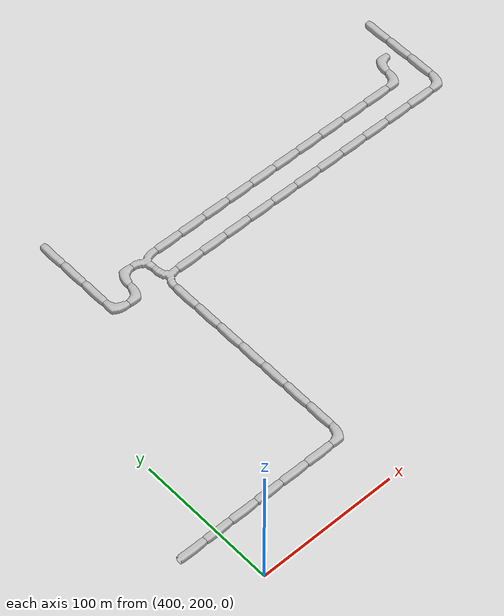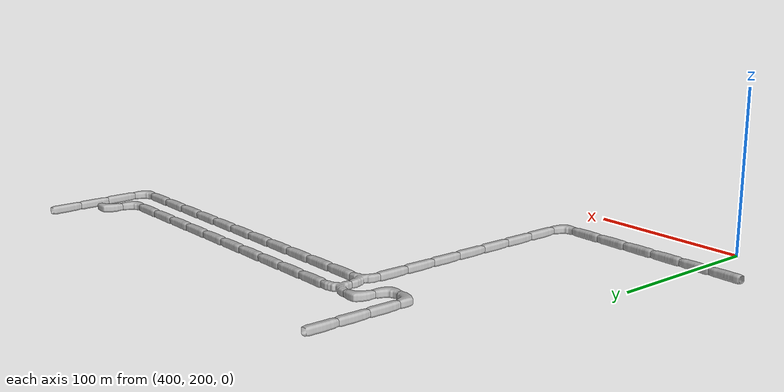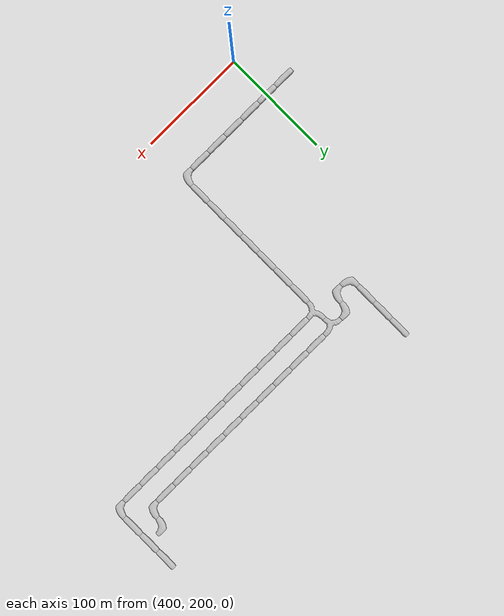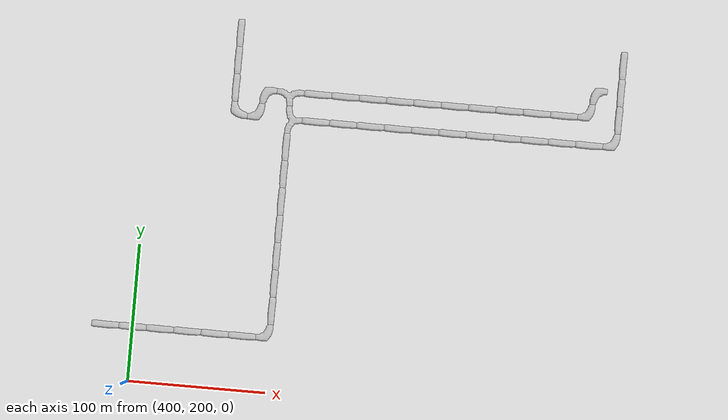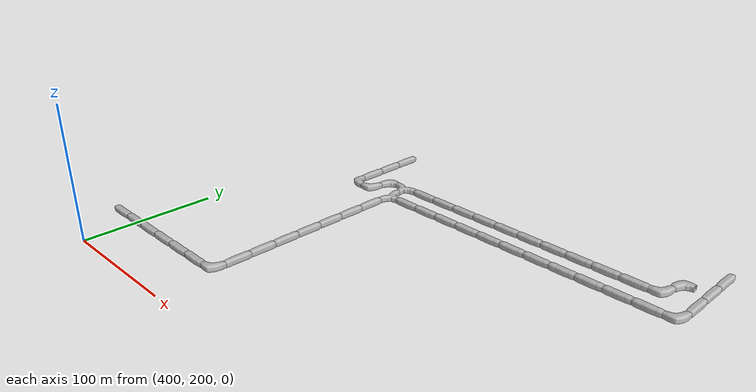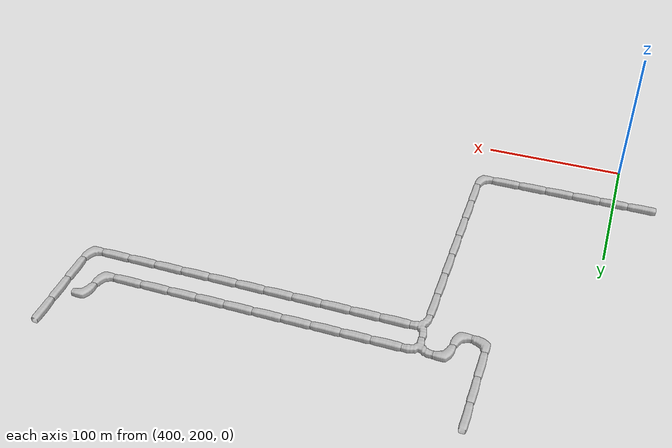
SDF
<sdf version="1.6">
 <world name="cave_16000_0">
  <include>
   <static>true</static>
   <name>cave_19_12</name>
   <pose>380 240 0 0 0 1.5707963267948966</pose>
   <uri>model://cave_straight_20m</uri>
  </include>
  <include>
   <static>true</static>
   <name>cave_20_12</name>
   <pose>400 240 0 0 0 1.5707963267948966</pose>
   <uri>model://cave_straight_20m</uri>
  </include>
  <include>
   <static>true</static>
   <name>cave_21_12</name>
   <pose>420 240 0 0 0 1.5707963267948966</pose>
   <uri>model://cave_straight_20m</uri>
  </include>
  <include>
   <static>true</static>
   <name>cave_22_12</name>
   <pose>440 240 0 0 0 1.5707963267948966</pose>
   <uri>model://cave_straight_20m</uri>
  </include>
  <include>
   <static>true</static>
   <name>cave_23_12</name>
   <pose>460 240 0 0 0 1.5707963267948966</pose>
   <uri>model://cave_straight_20m</uri>
  </include>
  <include>
   <static>true</static>
   <name>cave_24_12</name>
   <pose>480 240 0 0 0 1.5707963267948966</pose>
   <uri>model://cave_straight_20m</uri>
  </include>
  <include>
   <static>true</static>
   <name>cave_25_12</name>
   <pose>500 240 0 0 0 1.5707963267948966</pose>
   <uri>model://cave_L_20m</uri>
  </include>
  <include>
   <static>true</static>
   <name>cave_25_13</name>
   <pose>500 260 0 0 0 0.0</pose>
   <uri>model://cave_straight_20m</uri>
  </include>
  <include>
   <static>true</static>
   <name>cave_25_14</name>
   <pose>500 280 0 0 0 0.0</pose>
   <uri>model://cave_straight_20m</uri>
  </include>
  <include>
   <static>true</static>
   <name>cave_25_15</name>
   <pose>500 300 0 0 0 0.0</pose>
   <uri>model://cave_straight_20m</uri>
  </include>
  <include>
   <static>true</static>
   <name>cave_25_16</name>
   <pose>500 320 0 0 0 0.0</pose>
   <uri>model://cave_straight_20m</uri>
  </include>
  <include>
   <static>true</static>
   <name>cave_25_17</name>
   <pose>500 340 0 0 0 0.0</pose>
   <uri>model://cave_straight_20m</uri>
  </include>
  <include>
   <static>true</static>
   <name>cave_25_18</name>
   <pose>500 360 0 0 0 0.0</pose>
   <uri>model://cave_straight_20m</uri>
  </include>
  <include>
   <static>true</static>
   <name>cave_25_19</name>
   <pose>500 380 0 0 0 0.0</pose>
   <uri>model://cave_straight_20m</uri>
  </include>
  <include>
   <static>true</static>
   <name>cave_25_20</name>
   <pose>500 400 0 0 0 -1.5707963267948966</pose>
   <uri>model://cave_3way_20m</uri>
  </include>
  <include>
   <static>true</static>
   <name>cave_26_20</name>
   <pose>520 400 0 0 0 1.5707963267948966</pose>
   <uri>model://cave_straight_20m</uri>
  </include>
  <include>
   <static>true</static>
   <name>cave_27_20</name>
   <pose>540 400 0 0 0 1.5707963267948966</pose>
   <uri>model://cave_straight_20m</uri>
  </include>
  <include>
   <static>true</static>
   <name>cave_28_20</name>
   <pose>560 400 0 0 0 1.5707963267948966</pose>
   <uri>model://cave_straight_20m</uri>
  </include>
  <include>
   <static>true</static>
   <name>cave_29_20</name>
   <pose>580 400 0 0 0 1.5707963267948966</pose>
   <uri>model://cave_straight_20m</uri>
  </include>
  <include>
   <static>true</static>
   <name>cave_30_20</name>
   <pose>600 400 0 0 0 1.5707963267948966</pose>
   <uri>model://cave_straight_20m</uri>
  </include>
  <include>
   <static>true</static>
   <name>cave_31_20</name>
   <pose>620 400 0 0 0 1.5707963267948966</pose>
   <uri>model://cave_straight_20m</uri>
  </include>
  <include>
   <static>true</static>
   <name>cave_32_20</name>
   <pose>640 400 0 0 0 1.5707963267948966</pose>
   <uri>model://cave_straight_20m</uri>
  </include>
  <include>
   <static>true</static>
   <name>cave_33_20</name>
   <pose>660 400 0 0 0 1.5707963267948966</pose>
   <uri>model://cave_straight_20m</uri>
  </include>
  <include>
   <static>true</static>
   <name>cave_34_20</name>
   <pose>680 400 0 0 0 1.5707963267948966</pose>
   <uri>model://cave_straight_20m</uri>
  </include>
  <include>
   <static>true</static>
   <name>cave_35_20</name>
   <pose>700 400 0 0 0 1.5707963267948966</pose>
   <uri>model://cave_straight_20m</uri>
  </include>
  <include>
   <static>true</static>
   <name>cave_36_20</name>
   <pose>720 400 0 0 0 1.5707963267948966</pose>
   <uri>model://cave_straight_20m</uri>
  </include>
  <include>
   <static>true</static>
   <name>cave_37_20</name>
   <pose>740 400 0 0 0 1.5707963267948966</pose>
   <uri>model://cave_L_20m</uri>
  </include>
  <include>
   <static>true</static>
   <name>cave_37_21</name>
   <pose>740 420 0 0 0 0.0</pose>
   <uri>model://cave_straight_20m</uri>
  </include>
  <include>
   <static>true</static>
   <name>cave_37_22</name>
   <pose>740 440 0 0 0 0.0</pose>
   <uri>model://cave_straight_20m</uri>
  </include>
  <include>
   <static>true</static>
   <name>cave_37_23</name>
   <pose>740 460 0 0 0 0.0</pose>
   <uri>model://cave_straight_20m</uri>
  </include>
  <include>
   <static>true</static>
   <name>cave_25_21</name>
   <pose>500 420 0 0 0 3.141592653589793</pose>
   <uri>model://cave_3way_20m</uri>
  </include>
  <include>
   <static>true</static>
   <name>cave_26_21</name>
   <pose>520 420 0 0 0 1.5707963267948966</pose>
   <uri>model://cave_straight_20m</uri>
  </include>
  <include>
   <static>true</static>
   <name>cave_27_21</name>
   <pose>540 420 0 0 0 1.5707963267948966</pose>
   <uri>model://cave_straight_20m</uri>
  </include>
  <include>
   <static>true</static>
   <name>cave_28_21</name>
   <pose>560 420 0 0 0 1.5707963267948966</pose>
   <uri>model://cave_straight_20m</uri>
  </include>
  <include>
   <static>true</static>
   <name>cave_29_21</name>
   <pose>580 420 0 0 0 1.5707963267948966</pose>
   <uri>model://cave_straight_20m</uri>
  </include>
  <include>
   <static>true</static>
   <name>cave_30_21</name>
   <pose>600 420 0 0 0 1.5707963267948966</pose>
   <uri>model://cave_straight_20m</uri>
  </include>
  <include>
   <static>true</static>
   <name>cave_31_21</name>
   <pose>620 420 0 0 0 1.5707963267948966</pose>
   <uri>model://cave_straight_20m</uri>
  </include>
  <include>
   <static>true</static>
   <name>cave_32_21</name>
   <pose>640 420 0 0 0 1.5707963267948966</pose>
   <uri>model://cave_straight_20m</uri>
  </include>
  <include>
   <static>true</static>
   <name>cave_33_21</name>
   <pose>660 420 0 0 0 1.5707963267948966</pose>
   <uri>model://cave_straight_20m</uri>
  </include>
  <include>
   <static>true</static>
   <name>cave_34_21</name>
   <pose>680 420 0 0 0 1.5707963267948966</pose>
   <uri>model://cave_straight_20m</uri>
  </include>
  <include>
   <static>true</static>
   <name>cave_35_21</name>
   <pose>700 420 0 0 0 1.5707963267948966</pose>
   <uri>model://cave_straight_20m</uri>
  </include>
  <include>
   <static>true</static>
   <name>cave_36_21</name>
   <pose>720 420 0 0 0 1.5707963267948966</pose>
   <uri>model://cave_L_20m</uri>
  </include>
  <include>
   <static>true</static>
   <name>cave_36_22</name>
   <pose>720 440 0 0 0 -1.5707963267948966</pose>
   <uri>model://cave_L_20m</uri>
  </include>
  <include>
   <static>true</static>
   <name>cave_24_21</name>
   <pose>480 420 0 0 0 -1.5707963267948966</pose>
   <uri>model://cave_L_20m</uri>
  </include>
  <include>
   <static>true</static>
   <name>cave_24_20</name>
   <pose>480 400 0 0 0 1.5707963267948966</pose>
   <uri>model://cave_L_20m</uri>
  </include>
  <include>
   <static>true</static>
   <name>cave_23_20</name>
   <pose>460 400 0 0 0 0.0</pose>
   <uri>model://cave_L_20m</uri>
  </include>
  <include>
   <static>true</static>
   <name>cave_23_21</name>
   <pose>460 420 0 0 0 0.0</pose>
   <uri>model://cave_straight_20m</uri>
  </include>
  <include>
   <static>true</static>
   <name>cave_23_22</name>
   <pose>460 440 0 0 0 0.0</pose>
   <uri>model://cave_straight_20m</uri>
  </include>
  <include>
   <static>true</static>
   <name>cave_23_23</name>
   <pose>460 460 0 0 0 0.0</pose>
   <uri>model://cave_straight_20m</uri>
  </include>
 </world>
</sdf>
